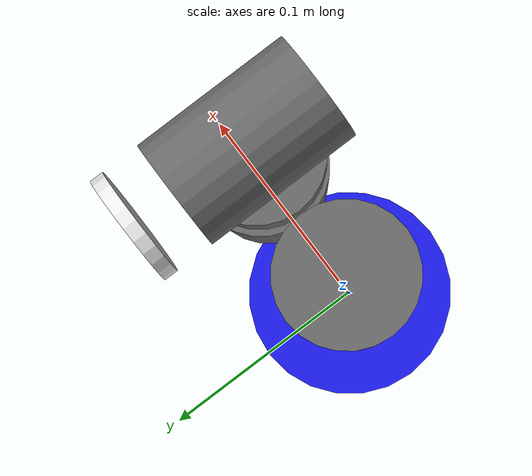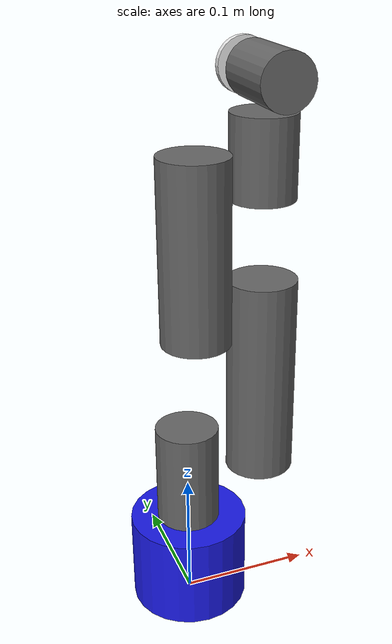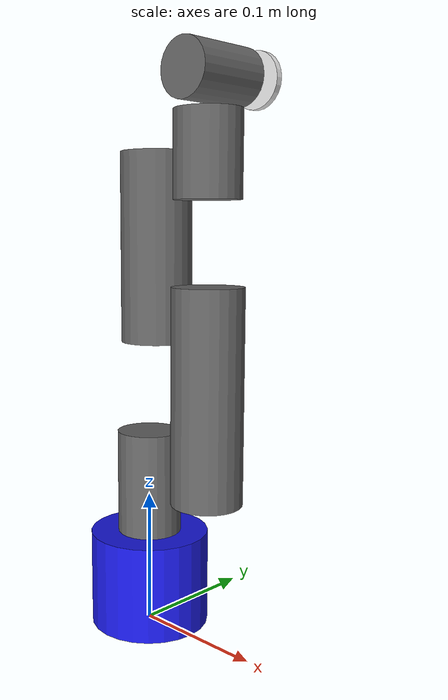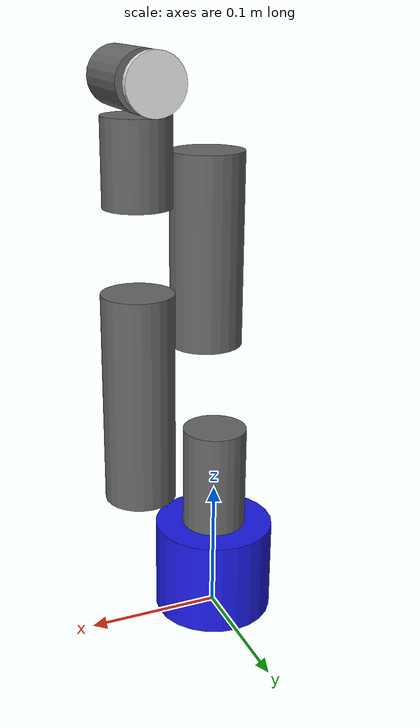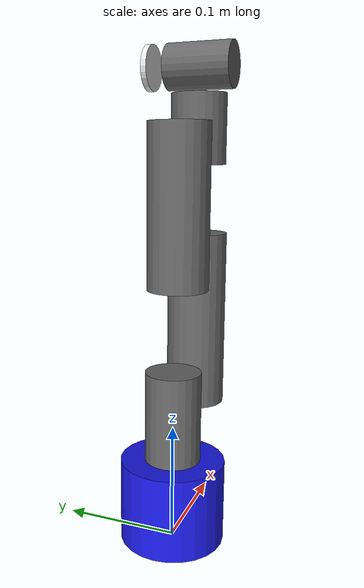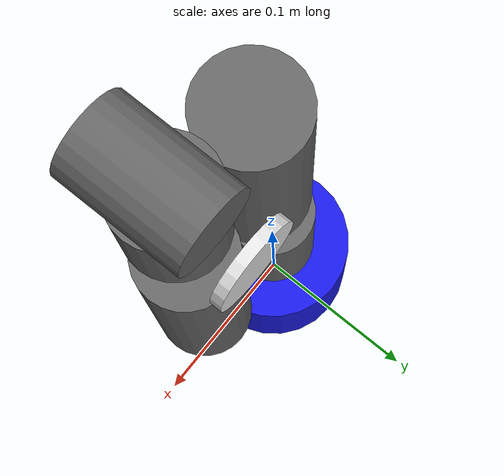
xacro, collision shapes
<?xml version="1.0"?>

<robot  xmlns:xacro="http://www.ros.org/wiki/xacro" name="aibot" >

<!-- arm -->

  <link name="joint1">

    <visual>
      <geometry>
       <mesh filename="package://ros_arm_moveit/urdf/meshes/joint1.dae"/>
      </geometry>
      <origin xyz = "0.0 0 0 " rpy = " 0 0 0"/>
      <material name = "white">
        <color rgba = "0.1 0.1 0.9 1"/>
      </material>
    </visual>

    <collision>
     <origin xyz = "0.0 0 0.036 " rpy = " 0 0 0"/>
      <geometry>
        <cylinder length="0.072" radius="0.045"/>
      </geometry>
    </collision>

  </link>

  <link name="joint2">

    <visual>
      <geometry>
       <mesh filename="package://ros_arm_moveit/urdf/meshes/joint2.dae"/>
      </geometry>
      <origin xyz = "0.0 0 0 " rpy = " 0 0 0"/>
      <material name = "white">
        <color rgba = "0.4 0.4 0.4 1"/>
      </material>
    </visual>

    <collision>
      <origin xyz = "0.0 0 0.04 " rpy = " 0 0 0"/>
      <geometry>
        <cylinder length="0.080" radius="0.024"/>
      </geometry>
    </collision>

  </link>

  <link name="joint3">

    <visual>
      <geometry>
       <mesh filename="package://ros_arm_moveit/urdf/meshes/joint3.dae"/>
      </geometry>
      <origin xyz = "0.0 0 0 " rpy = " 0 0 0"/>
      <material name = "white">
        <color rgba = "0.4 0.4 0.4 1"/>
      </material>
    </visual>

    <collision>
      <origin xyz = "0.027 0 0.054 " rpy = " 0 0 0"/>
      <geometry>
        <cylinder length="0.156" radius="0.026"/>
      </geometry>
    </collision>

  </link>

  <link name="joint4">

    <visual>
      <geometry>
       <mesh filename="package://ros_arm_moveit/urdf/meshes/joint4.dae"/>
      </geometry>
      <origin xyz = "0.0 0 0 " rpy = " 0 0 0"/>
      <material name = "white">
        <color rgba = "0.4 0.4 0.4 1"/>
      </material>
    </visual>

    <collision>
      <origin xyz = "-0.027 0 0.0475 " rpy = " 0 0 0"/>
      <geometry>
        <cylinder length="0.137" radius="0.026"/>
      </geometry>
    </collision>

  </link>

<link name="joint5">

    <visual>
      <geometry>
       <mesh filename="package://ros_arm_moveit/urdf/meshes/joint5.dae"/>
      </geometry>
      <origin xyz = "0.0 0 0 " rpy = " 0 0 0"/>
      <material name = "white">
        <color rgba = "0.4 0.4 0.4 1"/>
      </material>
    </visual>

    <collision>
      <origin xyz = "0.025 0 0.015 " rpy = " 0 0 0"/>
      <geometry>
        <cylinder length="0.06" radius="0.024"/>
      </geometry>
    </collision>

  </link>

  <link name="joint6">

    <visual>
      <geometry>
       <mesh filename="package://ros_arm_moveit/urdf/meshes/joint6.dae"/>
      </geometry>
      <origin xyz = "0.0 0 0 " rpy = " 0 0 0"/>
      <material name = "white">
        <color rgba = "0.4 0.4 0.4 1"/>
      </material>
    </visual>

    <collision>
      <origin xyz = "0.0 0 0.0379 " rpy = " 1.57 0 0"/>
      <geometry>
        <cylinder length="0.058" radius="0.020"/>
      </geometry>
    </collision>

  </link>

  <link name="joint6_flange">

    <visual>
      <geometry>
        <cylinder length="0.005" radius="0.02"/>
      </geometry>
      <origin xyz = "0.0 0 0 " rpy = " 1.57075 0 0"/>
      <material name = "white">
        <color rgba = "0.9 0.9 0.9 1"/>
      </material>
    </visual>

    <collision>
      <geometry>
        <cylinder length="0.005" radius="0.02"/>
      </geometry>
      <origin xyz = "0.0 0 0 " rpy = " 1.57075 0 0"/>
    </collision>

  </link>

  <joint name="joint2_to_joint1" type="revolute">
    <axis xyz="0 0 -1"/>
    <limit effort = "1000.0" lower = "-3.14" upper = "3.14159" velocity = "0"/>
    <parent link="joint1"/>
    <child link="joint2"/>
    <origin xyz= "0 0 0.0706" rpy = "0 0 0"/>
  </joint>

  <joint name="joint3_to_joint2" type="revolute">
    <axis xyz="-1 0 0"/>
    <limit effort = "1000.0" lower = "-3.14" upper = "3.14159" velocity = "0"/>
    <parent link="joint2"/>
    <child link="joint3"/>
    <origin xyz= "0.03256 0  0.05976" rpy = "0 0 0"/>
  </joint>

  <joint name="joint4_to_joint3" type="revolute">
    <axis xyz="1 0 0"/>
    <limit effort = "1000.0" lower = "-3.14" upper = "3.14159" velocity = "0"/>
    <parent link="joint3"/>
    <child link="joint4"/>
    <origin xyz= " 0.00272 0 0.1104   " rpy = "0 0 0"/>
  </joint>

  <joint name="joint5_to_joint4" type="revolute">
    <axis xyz="-1 0 0"/>
    <limit effort = "1000.0" lower = "-3.14" upper = "3.14159" velocity = "0"/>
    <parent link="joint4"/>
    <child link="joint5"/>
    <origin xyz= "-0.00164 0 0.096" rpy = "0 0 0"/>
  </joint>

  <joint name="joint6_to_joint5" type="revolute">
    <axis xyz="0 0 -1"/>
    <limit effort = "1000.0" lower = "-3.14" upper = "3.14159" velocity = "0"/>
    <parent link="joint5"/>
    <child link="joint6"/>
    <origin xyz= "0.0288 0 0.02976" rpy = "0 0 0"/>
  </joint>

  <joint name="joint6output_to_joint6" type="revolute">
    <axis xyz="0 -1 0"/>
    <limit effort = "1000.0" lower = "-3.14" upper = "3.14159" velocity = "0"/>
    <parent link="joint6"/>
    <child link="joint6_flange"/>
    <origin xyz= "0 0.0456 0.03792 " rpy = "0 0 0"/>
  </joint>

</robot>
